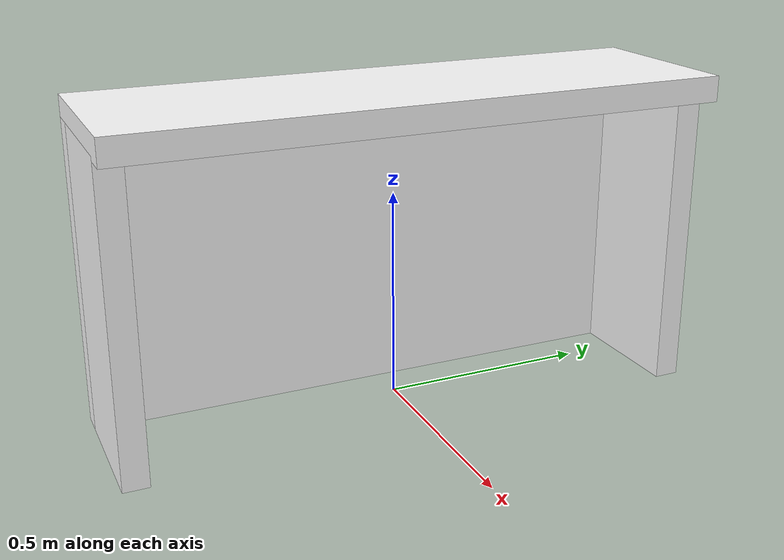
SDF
<?xml version="1.0"?>
<sdf version="1.9">
  <model name="u_desk">
    <static>true</static>
    <link name="body">

      <collision name="top_collision">
        <pose>0.04 0 0.73 0 0 0</pose>
        <geometry><box><size>0.42 1.40 0.06</size></box></geometry>
      </collision>
      <visual name="top_visual">
        <pose>0.04 0 0.73 0 0 0</pose>
        <geometry><box><size>0.42 1.40 0.06</size></box></geometry>
        <material>
          <ambient>1 1 1 1</ambient>
          <diffuse>1 1 1 1</diffuse>
          <specular>0.05 0.05 0.05 1</specular>
          <pbr>
            <metal>
              <albedo_map>materials/textures/wood_albedo.jpg</albedo_map>
              <normal_map>materials/textures/wood_normal.jpg</normal_map>
              <roughness_map>materials/textures/wood_roughness.jpg</roughness_map>
              <metalness>0.0</metalness>
            </metal>
          </pbr>
        </material>
      </visual>

      <collision name="left_panel_collision">
        <pose>0.04 0.67 0.35 0 0 0</pose>
        <geometry><box><size>0.30 0.06 0.72</size></box></geometry>
      </collision>
      <collision name="right_panel_collision">
        <pose>0.04 -0.67 0.35 0 0 0</pose>
        <geometry><box><size>0.30 0.06 0.72</size></box></geometry>
      </collision>
      <collision name="back_panel_collision">
        <pose>-0.14 0 0.35 0 0 0</pose>
        <geometry><box><size>0.06 1.40 0.72</size></box></geometry>
      </collision>

      <visual name="left_panel_visual">
        <pose>0.04 0.67 0.35 0 0 0</pose>
        <geometry><box><size>0.30 0.06 0.72</size></box></geometry>
        <material><ambient>1 1 1 1</ambient><diffuse>1 1 1 1</diffuse><specular>0.05 0.05 0.05 1</specular><pbr><metal><albedo_map>materials/textures/wood_albedo.jpg</albedo_map><normal_map>materials/textures/wood_normal.jpg</normal_map><roughness_map>materials/textures/wood_roughness.jpg</roughness_map><metalness>0.0</metalness></metal></pbr></material>
      </visual>
      <visual name="right_panel_visual">
        <pose>0.04 -0.67 0.35 0 0 0</pose>
        <geometry><box><size>0.30 0.06 0.72</size></box></geometry>
        <material><ambient>1 1 1 1</ambient><diffuse>1 1 1 1</diffuse><specular>0.05 0.05 0.05 1</specular><pbr><metal><albedo_map>materials/textures/wood_albedo.jpg</albedo_map><normal_map>materials/textures/wood_normal.jpg</normal_map><roughness_map>materials/textures/wood_roughness.jpg</roughness_map><metalness>0.0</metalness></metal></pbr></material>
      </visual>
      <visual name="back_panel_visual">
        <pose>-0.14 0 0.35 0 0 0</pose>
        <geometry><box><size>0.06 1.40 0.72</size></box></geometry>
        <material><ambient>1 1 1 1</ambient><diffuse>1 1 1 1</diffuse><specular>0.05 0.05 0.05 1</specular><pbr><metal><albedo_map>materials/textures/wood_albedo.jpg</albedo_map><normal_map>materials/textures/wood_normal.jpg</normal_map><roughness_map>materials/textures/wood_roughness.jpg</roughness_map><metalness>0.0</metalness></metal></pbr></material>
      </visual>

    </link>
  </model>
</sdf>
